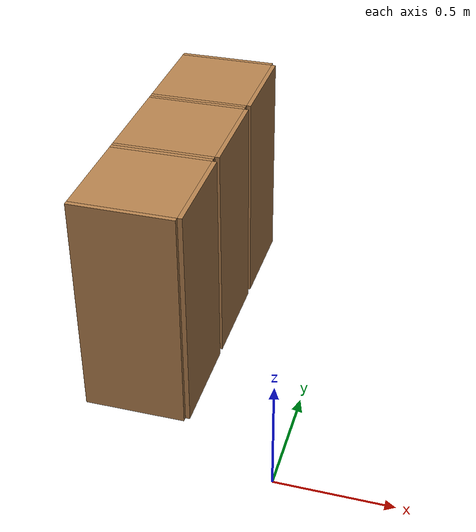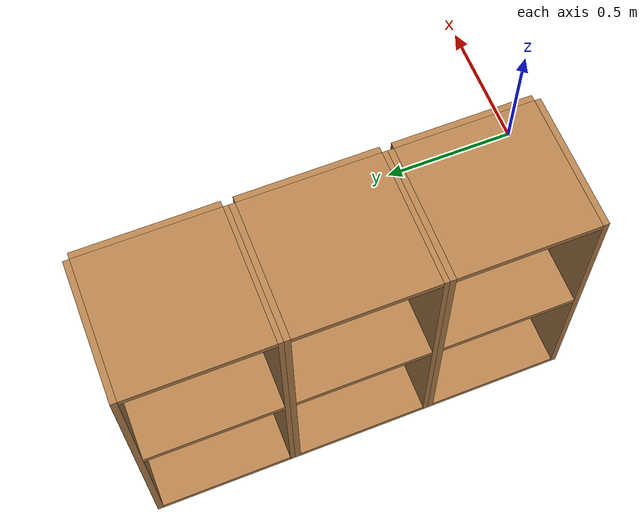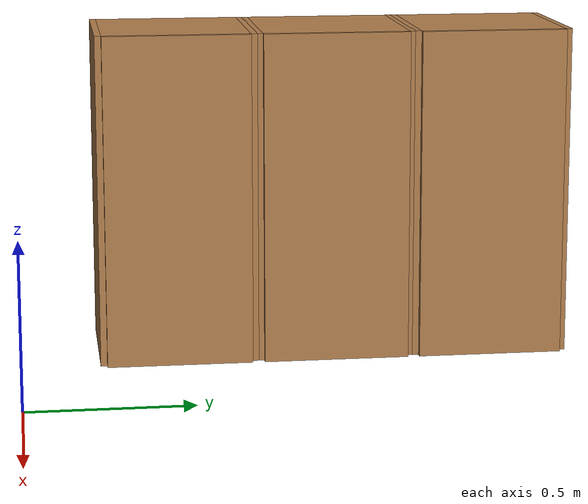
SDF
<?xml version='1.0'?>
<sdf version='1.6'>
  <model name='Locker3'>
    <model name='cabinet'>
      <static>1</static>
      <link name='cabinet_bottom_plate'>
        <inertial>
          <pose frame=''>0 0 -1 0 -0 0</pose>
          <inertia>
            <ixx>2.05</ixx>
            <ixy>0</ixy>
            <ixz>0</ixz>
            <iyy>2.05</iyy>
            <iyz>0</iyz>
            <izz>2.05</izz>
          </inertia>
          <mass>25</mass>
        </inertial>
        <collision name='cabinet_bottom_plate_geom'>
          <pose frame=''>0 0 0.01 0 -0 0</pose>
          <geometry>
            <box>
              <size>0.45 0.45 0.02</size>
            </box>
          </geometry>
        </collision>
        <visual name='cabinet_bottom_plate_geom_visual'>
          <pose frame=''>0 0 0.01 0 -0 0</pose>
          <geometry>
            <box>
              <size>0.45 0.45 0.02</size>
            </box>
          </geometry>
          <material>
            <script>
              <uri>file://media/materials/scripts/gazebo.material</uri>
              <name>Gazebo/Wood</name>
            </script>
          </material>
        </visual>
        <collision name='cabinet_bottom_plate_geom_cabinet_back_plate'>
          <pose frame=''>0.235 0 0.51 0 -0 0</pose>
          <geometry>
            <box>
              <size>0.02 0.45 1.02</size>
            </box>
          </geometry>
        </collision>
        <visual name='cabinet_bottom_plate_geom_cabinet_back_plate_visual'>
          <pose frame=''>0.235 0 0.51 0 -0 0</pose>
          <geometry>
            <box>
              <size>0.02 0.45 1.02</size>
            </box>
          </geometry>
          <material>
            <script>
              <uri>file://media/materials/scripts/gazebo.material</uri>
              <name>Gazebo/Wood</name>
            </script>
          </material>
        </visual>
        <collision name='cabinet_bottom_plate_geom_cabinet_left_plate'>
          <pose frame=''>0 0.235 0.51 0 -0 0</pose>
          <geometry>
            <box>
              <size>0.45 0.02 1.02</size>
            </box>
          </geometry>
        </collision>
        <visual name='cabinet_bottom_plate_geom_cabinet_left_plate_visual'>
          <pose frame=''>0 0.235 0.51 0 -0 0</pose>
          <geometry>
            <box>
              <size>0.45 0.02 1.02</size>
            </box>
          </geometry>
          <material>
            <script>
              <uri>file://media/materials/scripts/gazebo.material</uri>
              <name>Gazebo/Wood</name>
            </script>
          </material>
        </visual>
        <collision name='cabinet_bottom_plate_geom_cabinet_middle_plate'>
          <pose frame=''>0 0 0.51 0 -0 0</pose>
          <geometry>
            <box>
              <size>0.45 0.45 0.02</size>
            </box>
          </geometry>
        </collision>
        <visual name='cabinet_bottom_plate_geom_cabinet_middle_plate_visual'>
          <pose frame=''>0 0 0.51 0 -0 0</pose>
          <geometry>
            <box>
              <size>0.45 0.45 0.02</size>
            </box>
          </geometry>
          <material>
            <script>
              <uri>file://media/materials/scripts/gazebo.material</uri>
              <name>Gazebo/Wood</name>
            </script>
          </material>
        </visual>
        <collision name='cabinet_bottom_plate_geom_cabinet_right_plate'>
          <pose frame=''>0 -0.235 0.51 0 -0 0</pose>
          <geometry>
            <box>
              <size>0.45 0.02 1.02</size>
            </box>
          </geometry>
        </collision>
        <visual name='cabinet_bottom_plate_geom_cabinet_right_plate_visual'>
          <pose frame=''>0 -0.235 0.51 0 -0 0</pose>
          <geometry>
            <box>
              <size>0.45 0.02 1.02</size>
            </box>
          </geometry>
          <material>
            <script>
              <uri>file://media/materials/scripts/gazebo.material</uri>
              <name>Gazebo/Wood</name>
            </script>
          </material>
        </visual>
        <collision name='cabinet_bottom_plate_geom_cabinet_top_plate'>
          <pose frame=''>0 0 1.01 0 -0 0</pose>
          <geometry>
            <box>
              <size>0.45 0.45 0.02</size>
            </box>
          </geometry>
        </collision>
        <visual name='cabinet_bottom_plate_geom_cabinet_top_plate_visual'>
          <pose frame=''>0 0 1.01 0 -0 0</pose>
          <geometry>
            <box>
              <size>0.45 0.45 0.02</size>
            </box>
          </geometry>
          <material>
            <script>
              <uri>file://media/materials/scripts/gazebo.material</uri>
              <name>Gazebo/Wood</name>
            </script>
          </material>
        </visual>
      </link>
      <pose frame=''>-0.676968 1.45758 0 0 -0 0</pose>
    </model>
    <model name='cabinet_clone'>
      <static>1</static>
      <link name='cabinet_bottom_plate'>
        <inertial>
          <pose frame=''>0 0 -1 0 -0 0</pose>
          <inertia>
            <ixx>2.05</ixx>
            <ixy>0</ixy>
            <ixz>0</ixz>
            <iyy>2.05</iyy>
            <iyz>0</iyz>
            <izz>2.05</izz>
          </inertia>
          <mass>25</mass>
        </inertial>
        <collision name='cabinet_bottom_plate_geom'>
          <pose frame=''>0 0 0.01 0 -0 0</pose>
          <geometry>
            <box>
              <size>0.45 0.45 0.02</size>
            </box>
          </geometry>
        </collision>
        <visual name='cabinet_bottom_plate_geom_visual'>
          <pose frame=''>0 0 0.01 0 -0 0</pose>
          <geometry>
            <box>
              <size>0.45 0.45 0.02</size>
            </box>
          </geometry>
          <material>
            <script>
              <uri>file://media/materials/scripts/gazebo.material</uri>
              <name>Gazebo/Wood</name>
            </script>
          </material>
        </visual>
        <collision name='cabinet_bottom_plate_geom_cabinet_back_plate'>
          <pose frame=''>0.235 0 0.51 0 -0 0</pose>
          <geometry>
            <box>
              <size>0.02 0.45 1.02</size>
            </box>
          </geometry>
        </collision>
        <visual name='cabinet_bottom_plate_geom_cabinet_back_plate_visual'>
          <pose frame=''>0.235 0 0.51 0 -0 0</pose>
          <geometry>
            <box>
              <size>0.02 0.45 1.02</size>
            </box>
          </geometry>
          <material>
            <script>
              <uri>file://media/materials/scripts/gazebo.material</uri>
              <name>Gazebo/Wood</name>
            </script>
          </material>
        </visual>
        <collision name='cabinet_bottom_plate_geom_cabinet_left_plate'>
          <pose frame=''>0 0.235 0.51 0 -0 0</pose>
          <geometry>
            <box>
              <size>0.45 0.02 1.02</size>
            </box>
          </geometry>
        </collision>
        <visual name='cabinet_bottom_plate_geom_cabinet_left_plate_visual'>
          <pose frame=''>0 0.235 0.51 0 -0 0</pose>
          <geometry>
            <box>
              <size>0.45 0.02 1.02</size>
            </box>
          </geometry>
          <material>
            <script>
              <uri>file://media/materials/scripts/gazebo.material</uri>
              <name>Gazebo/Wood</name>
            </script>
          </material>
        </visual>
        <collision name='cabinet_bottom_plate_geom_cabinet_middle_plate'>
          <pose frame=''>0 0 0.51 0 -0 0</pose>
          <geometry>
            <box>
              <size>0.45 0.45 0.02</size>
            </box>
          </geometry>
        </collision>
        <visual name='cabinet_bottom_plate_geom_cabinet_middle_plate_visual'>
          <pose frame=''>0 0 0.51 0 -0 0</pose>
          <geometry>
            <box>
              <size>0.45 0.45 0.02</size>
            </box>
          </geometry>
          <material>
            <script>
              <uri>file://media/materials/scripts/gazebo.material</uri>
              <name>Gazebo/Wood</name>
            </script>
          </material>
        </visual>
        <collision name='cabinet_bottom_plate_geom_cabinet_right_plate'>
          <pose frame=''>0 -0.235 0.51 0 -0 0</pose>
          <geometry>
            <box>
              <size>0.45 0.02 1.02</size>
            </box>
          </geometry>
        </collision>
        <visual name='cabinet_bottom_plate_geom_cabinet_right_plate_visual'>
          <pose frame=''>0 -0.235 0.51 0 -0 0</pose>
          <geometry>
            <box>
              <size>0.45 0.02 1.02</size>
            </box>
          </geometry>
          <material>
            <script>
              <uri>file://media/materials/scripts/gazebo.material</uri>
              <name>Gazebo/Wood</name>
            </script>
          </material>
        </visual>
        <collision name='cabinet_bottom_plate_geom_cabinet_top_plate'>
          <pose frame=''>0 0 1.01 0 -0 0</pose>
          <geometry>
            <box>
              <size>0.45 0.45 0.02</size>
            </box>
          </geometry>
        </collision>
        <visual name='cabinet_bottom_plate_geom_cabinet_top_plate_visual'>
          <pose frame=''>0 0 1.01 0 -0 0</pose>
          <geometry>
            <box>
              <size>0.45 0.45 0.02</size>
            </box>
          </geometry>
          <material>
            <script>
              <uri>file://media/materials/scripts/gazebo.material</uri>
              <name>Gazebo/Wood</name>
            </script>
          </material>
        </visual>
      </link>
      <pose frame=''>-0.676968 0.970971 0 0 -0 0</pose>
    </model>
    <model name='cabinet_clone_0'>
      <static>1</static>
      <link name='cabinet_bottom_plate'>
        <inertial>
          <pose frame=''>0 0 -1 0 -0 0</pose>
          <inertia>
            <ixx>2.05</ixx>
            <ixy>0</ixy>
            <ixz>0</ixz>
            <iyy>2.05</iyy>
            <iyz>0</iyz>
            <izz>2.05</izz>
          </inertia>
          <mass>25</mass>
        </inertial>
        <collision name='cabinet_bottom_plate_geom'>
          <pose frame=''>0 0 0.01 0 -0 0</pose>
          <geometry>
            <box>
              <size>0.45 0.45 0.02</size>
            </box>
          </geometry>
        </collision>
        <visual name='cabinet_bottom_plate_geom_visual'>
          <pose frame=''>0 0 0.01 0 -0 0</pose>
          <geometry>
            <box>
              <size>0.45 0.45 0.02</size>
            </box>
          </geometry>
          <material>
            <script>
              <uri>file://media/materials/scripts/gazebo.material</uri>
              <name>Gazebo/Wood</name>
            </script>
          </material>
        </visual>
        <collision name='cabinet_bottom_plate_geom_cabinet_back_plate'>
          <pose frame=''>0.235 0 0.51 0 -0 0</pose>
          <geometry>
            <box>
              <size>0.02 0.45 1.02</size>
            </box>
          </geometry>
        </collision>
        <visual name='cabinet_bottom_plate_geom_cabinet_back_plate_visual'>
          <pose frame=''>0.235 0 0.51 0 -0 0</pose>
          <geometry>
            <box>
              <size>0.02 0.45 1.02</size>
            </box>
          </geometry>
          <material>
            <script>
              <uri>file://media/materials/scripts/gazebo.material</uri>
              <name>Gazebo/Wood</name>
            </script>
          </material>
        </visual>
        <collision name='cabinet_bottom_plate_geom_cabinet_left_plate'>
          <pose frame=''>0 0.235 0.51 0 -0 0</pose>
          <geometry>
            <box>
              <size>0.45 0.02 1.02</size>
            </box>
          </geometry>
        </collision>
        <visual name='cabinet_bottom_plate_geom_cabinet_left_plate_visual'>
          <pose frame=''>0 0.235 0.51 0 -0 0</pose>
          <geometry>
            <box>
              <size>0.45 0.02 1.02</size>
            </box>
          </geometry>
          <material>
            <script>
              <uri>file://media/materials/scripts/gazebo.material</uri>
              <name>Gazebo/Wood</name>
            </script>
          </material>
        </visual>
        <collision name='cabinet_bottom_plate_geom_cabinet_middle_plate'>
          <pose frame=''>0 0 0.51 0 -0 0</pose>
          <geometry>
            <box>
              <size>0.45 0.45 0.02</size>
            </box>
          </geometry>
        </collision>
        <visual name='cabinet_bottom_plate_geom_cabinet_middle_plate_visual'>
          <pose frame=''>0 0 0.51 0 -0 0</pose>
          <geometry>
            <box>
              <size>0.45 0.45 0.02</size>
            </box>
          </geometry>
          <material>
            <script>
              <uri>file://media/materials/scripts/gazebo.material</uri>
              <name>Gazebo/Wood</name>
            </script>
          </material>
        </visual>
        <collision name='cabinet_bottom_plate_geom_cabinet_right_plate'>
          <pose frame=''>0 -0.235 0.51 0 -0 0</pose>
          <geometry>
            <box>
              <size>0.45 0.02 1.02</size>
            </box>
          </geometry>
        </collision>
        <visual name='cabinet_bottom_plate_geom_cabinet_right_plate_visual'>
          <pose frame=''>0 -0.235 0.51 0 -0 0</pose>
          <geometry>
            <box>
              <size>0.45 0.02 1.02</size>
            </box>
          </geometry>
          <material>
            <script>
              <uri>file://media/materials/scripts/gazebo.material</uri>
              <name>Gazebo/Wood</name>
            </script>
          </material>
        </visual>
        <collision name='cabinet_bottom_plate_geom_cabinet_top_plate'>
          <pose frame=''>0 0 1.01 0 -0 0</pose>
          <geometry>
            <box>
              <size>0.45 0.45 0.02</size>
            </box>
          </geometry>
        </collision>
        <visual name='cabinet_bottom_plate_geom_cabinet_top_plate_visual'>
          <pose frame=''>0 0 1.01 0 -0 0</pose>
          <geometry>
            <box>
              <size>0.45 0.45 0.02</size>
            </box>
          </geometry>
          <material>
            <script>
              <uri>file://media/materials/scripts/gazebo.material</uri>
              <name>Gazebo/Wood</name>
            </script>
          </material>
        </visual>
      </link>
      <pose frame=''>-0.676968 0.48391 0 0 -0 0</pose>
    </model>
    <static>0</static>
    <allow_auto_disable>1</allow_auto_disable>
  </model>
</sdf>
